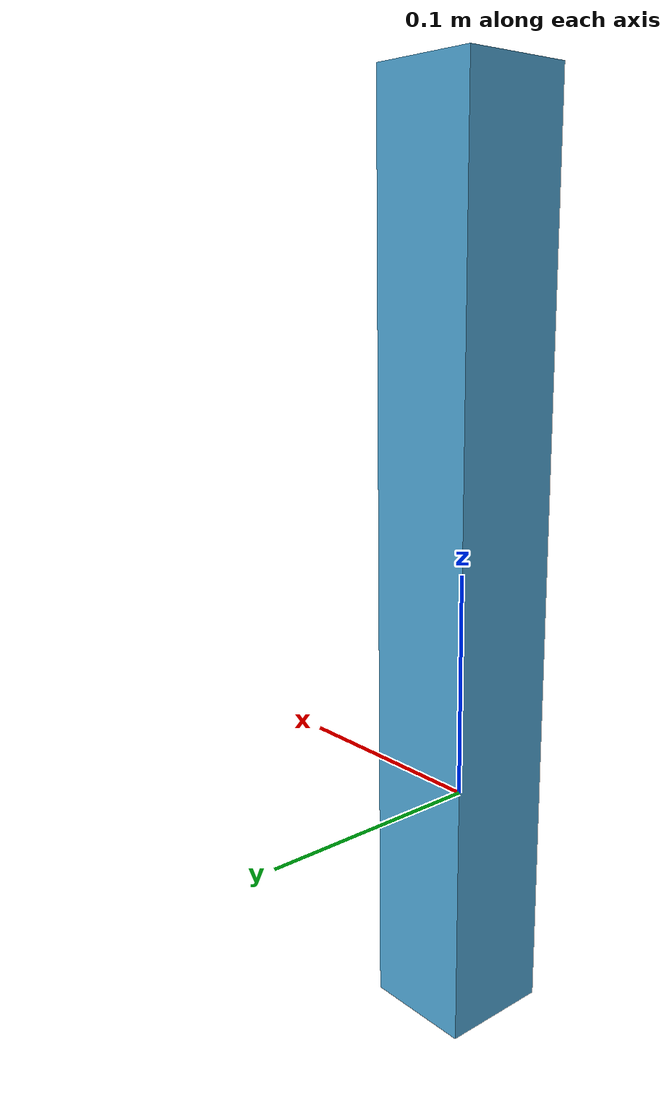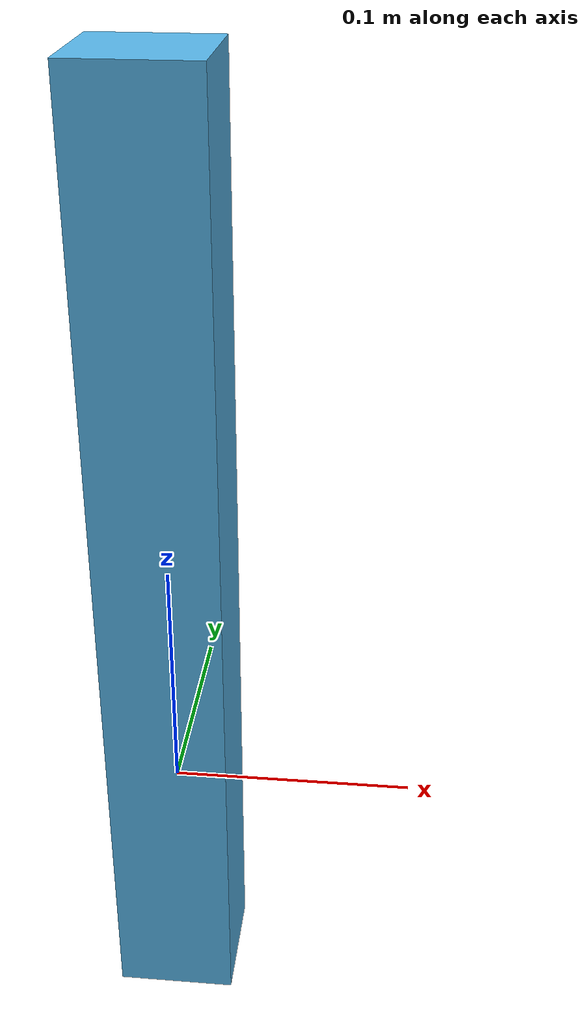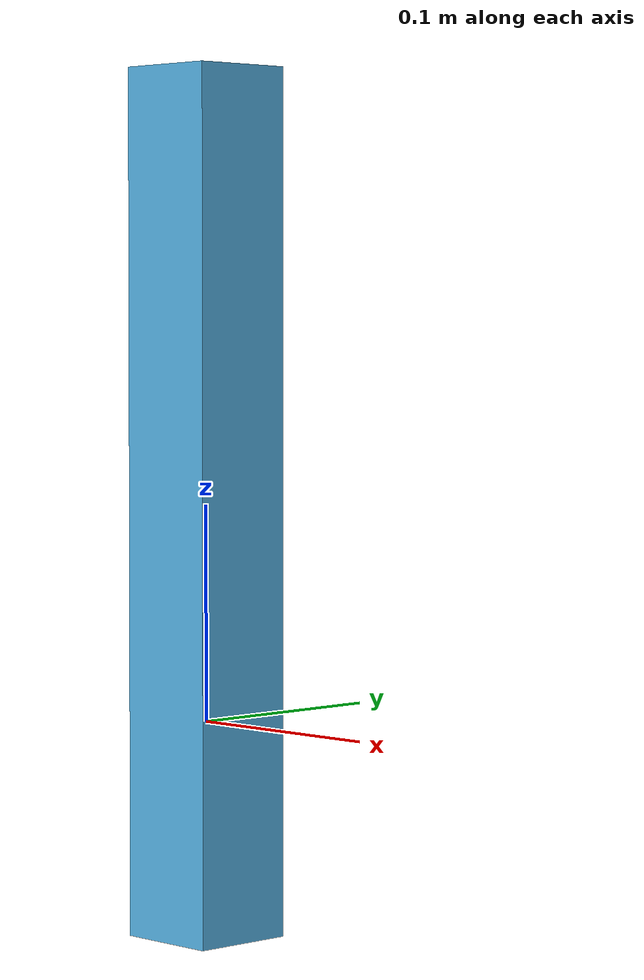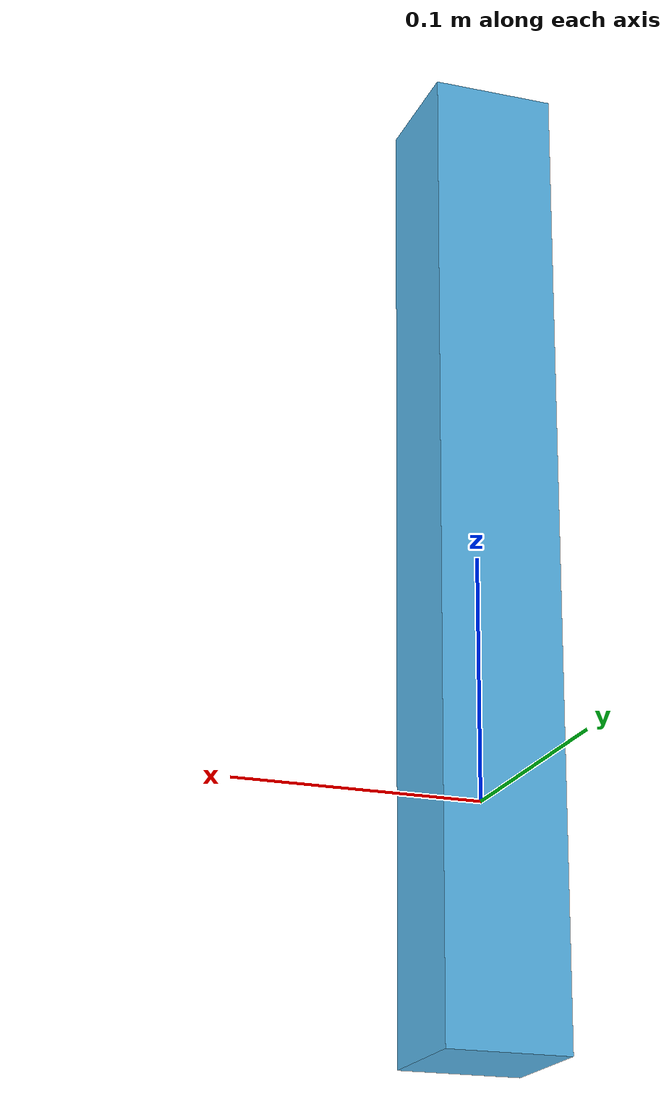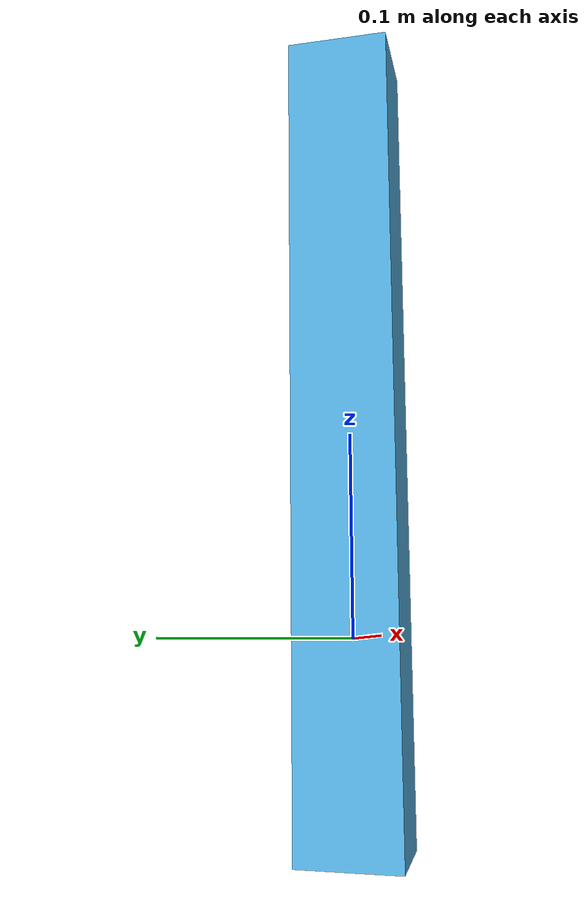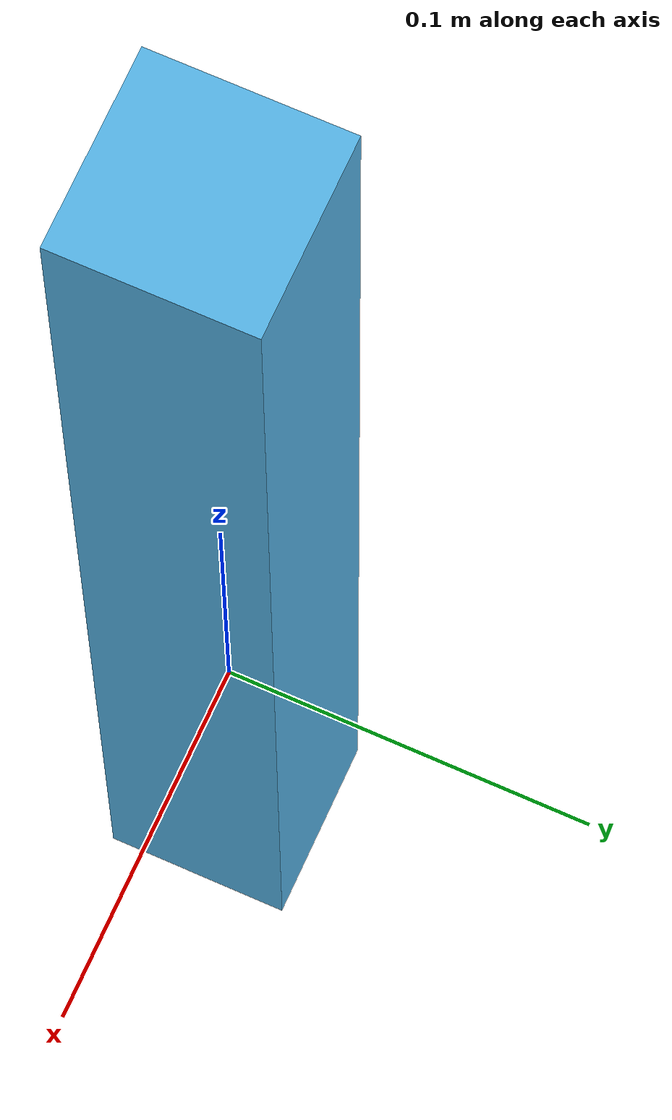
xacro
<?xml version="1.0"?>
<robot xmlns:xacro="http://wiki.ros.org/xacro" name="$(arg name)">

  <xacro:arg name="name" default="unused_default"/>
  <xacro:arg name="segment_length" default="0.4"/>

  <xacro:include filename="$(find fixture_renamed)/urdf/shared_macro.xacro"/>

  <link name="base_link"/>
  <xacro:sized_link name="link_1" length="$(arg segment_length)"/>

  <joint name="joint_1" type="revolute">
    <parent link="base_link"/>
    <child link="link_1"/>
    <origin xyz="0 0 0.1" rpy="0 0 0"/>
    <axis xyz="0 0 1"/>
    <limit lower="-3.14" upper="3.14" effort="100" velocity="2.0"/>
  </joint>

</robot>

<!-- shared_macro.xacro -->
<!-- Reached through $(find fixture_renamed), the declared package name. If the
     index keyed on the directory (Renamed_Package_Dir) this include fails. -->
<robot xmlns:xacro="http://wiki.ros.org/xacro">

  <xacro:macro name="sized_link" params="name length">
    <link name="${name}">
      <visual>
        <geometry><box size="0.05 0.05 ${length}"/></geometry>
      </visual>
    </link>
  </xacro:macro>

</robot>
